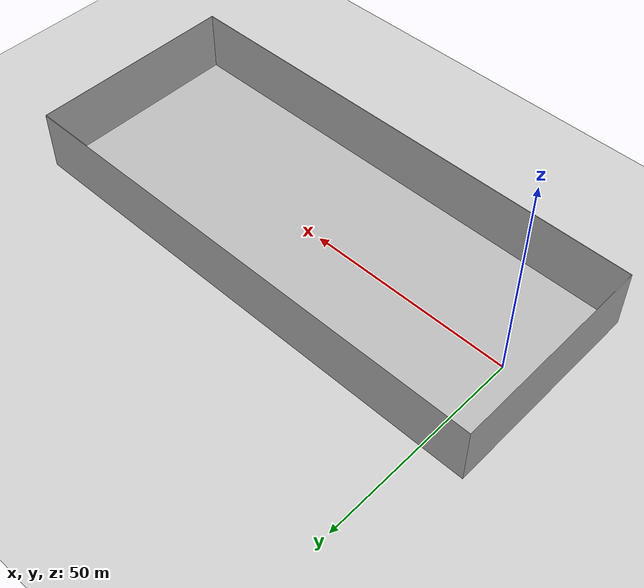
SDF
<?xml version="1.0" ?>
<sdf version="1.4">
  <world name="default">
    <include>
      <uri>model://ground_plane</uri>
    </include>
    <include>
      <uri>model://sun</uri>
    </include>

	<model name="world_model">
		<pose>0.0 0.0 0.0 0.0 0.0 0.0</pose>
		<static>true</static>

		<link name="world_link">
			<!--Only the mesh of the maze on top of the ground plane for now!-->
			<visual name="world_visual">
				<geometry>
					<mesh><uri>file:///home/groundstation/catkin_ws/src/trajectory_reshaping/trajectory_reshaping_world_visualizer/resources/trajectory_reshaping_mockup/trajectory_reshaping_mockup.dae</uri></mesh>
				</geometry>
			</visual>
			<collision name="world_collision">
		    	<geometry>
					<mesh><uri>file:///home/groundstation/catkin_ws/src/trajectory_reshaping/trajectory_reshaping_world_visualizer/resources/trajectory_reshaping_mockup/trajectory_reshaping_mockup.stl</uri></mesh>
		    	</geometry>
				<surface>
					<friction>
						<ode>
							<mu>1.0</mu>
							<mu2>1.0</mu2>
						</ode>
					</friction>
				</surface>
			</collision>
		</link>
	</model>

    <!-- Only one ROS interface plugin is required per world, as any other plugin can connect a Gazebo
         topic to a ROS topic (or vise versa). -->
    <plugin name="ros_interface_plugin" filename="librotors_gazebo_ros_interface_plugin.so"/>

    <spherical_coordinates>
      <surface_model>EARTH_WGS84</surface_model>
      <latitude_deg>47.3667</latitude_deg>
      <longitude_deg>8.5500</longitude_deg>
      <elevation>500.0</elevation>
      <heading_deg>0</heading_deg>
    </spherical_coordinates>
    <physics type='ode'>
      <ode>
        <solver>
          <type>quick</type>
          <iters>1000</iters>
          <sor>1.3</sor>
        </solver>
        <constraints>
          <cfm>0</cfm>
          <erp>0.2</erp>
          <contact_max_correcting_vel>100</contact_max_correcting_vel>
          <contact_surface_layer>0.001</contact_surface_layer>
        </constraints>
      </ode>
      <max_step_size>0.005</max_step_size>
      <real_time_update_rate>200</real_time_update_rate>
      <gravity>0 0 -9.81</gravity>
    </physics>

    <gui fullscreen='0'>
      <camera name='user_camera'>
        <pose>-21.2112 -15.4355 31.7079 0 0.695643 0.000193</pose>
        <view_controller>orbit</view_controller>
      </camera>
    </gui>
  </world>
</sdf>
